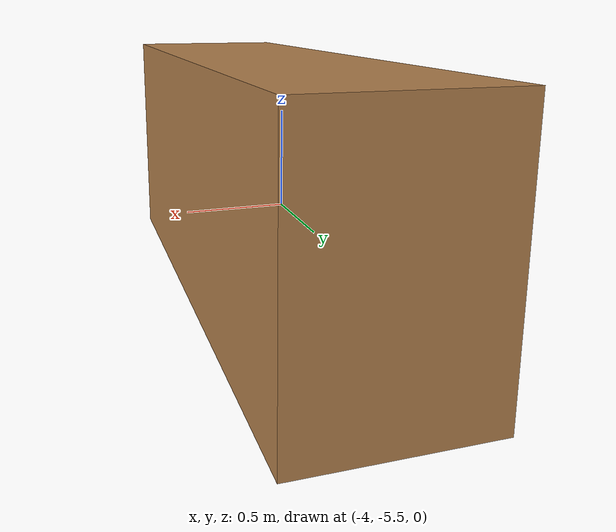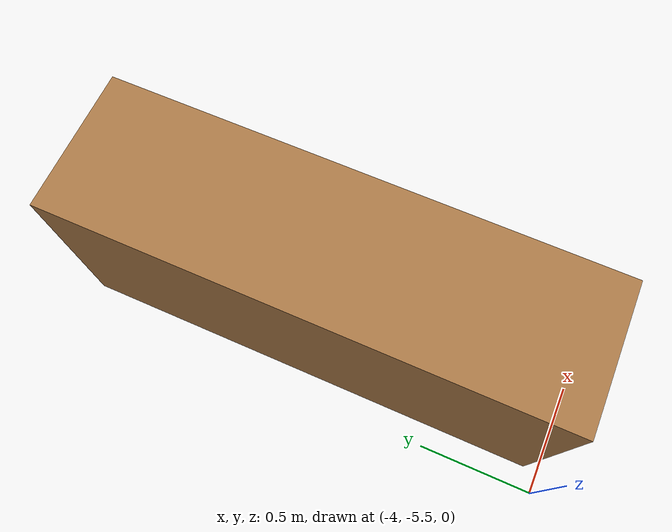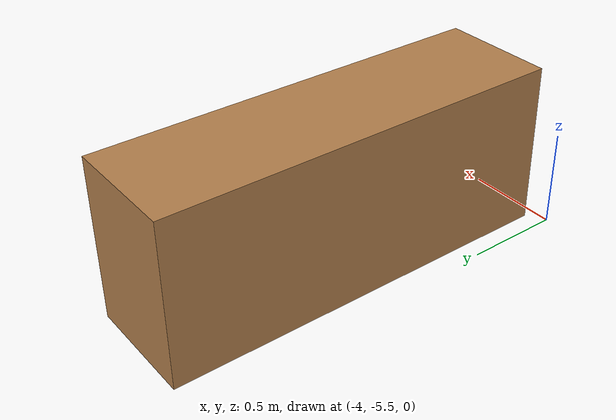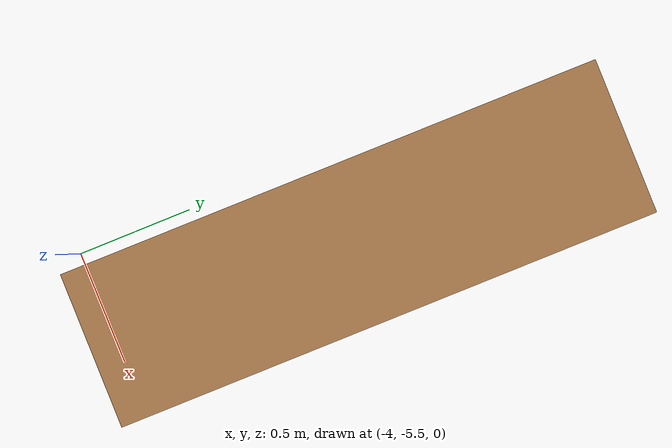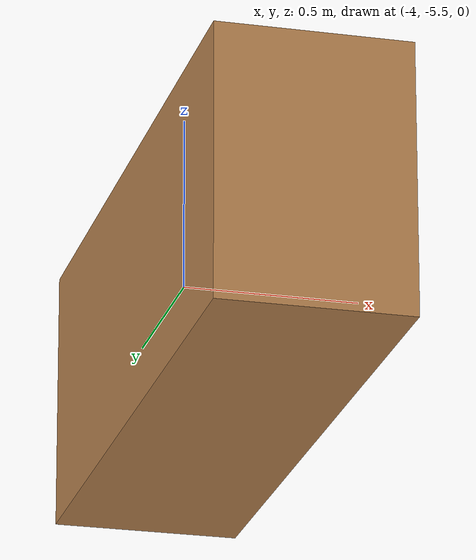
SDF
<?xml version="1.0" ?>
<sdf version='1.4'>
  <model name='encimera'>
    <link name='encimera_link'>
      <pose>0 0 0 0 -0 0</pose>
      <inertial>
        <pose>0 0 0.425 0 -0 0</pose>
        <mass>50</mass>
        <inertia>
          <ixx>5</ixx>
          <ixy>0</ixy>
          <ixz>0</ixz>
          <iyy>5</iyy>
          <iyz>0</iyz>
          <izz>5</izz>
        </inertia>
      </inertial>
      <collision name='encimera_link_collision'>
        <pose>0 0 0.425 0 -0 0</pose>
        <geometry>
          <box>
            <size>2.1 0.6 0.85</size>
          </box>
        </geometry>
        <surface>
          <contact>
            <ode/>
          </contact>
          <friction>
            <ode>
              <mu>100</mu>
              <mu2>100</mu2>
            </ode>
          </friction>
          <bounce/>
        </surface>
        <max_contacts>10</max_contacts>
      </collision>
      <visual name='encimera_link_visual'>
        <pose>0 0 0.425 0 -0 0</pose>
        <geometry>
          <box>
            <size>2.1 0.6 0.85</size>
          </box>
        </geometry>
        <material>
          <script>
            <name>Gazebo/Wood</name>
            <uri>__default__</uri>
          </script>
        </material>
      </visual>
      <gravity>1</gravity>
      <velocity_decay>
        <linear>0</linear>
        <angular>0</angular>
      </velocity_decay>
      <self_collide>1</self_collide>
      <kinematic>0</kinematic>
    </link>
    <pose>-3.6 -4.39 0 0 -0 1.57</pose>
    <static>0</static>
  </model>
</sdf>
